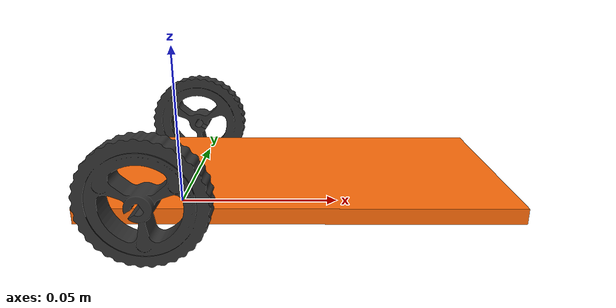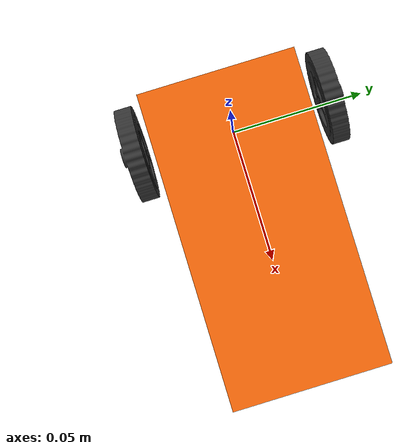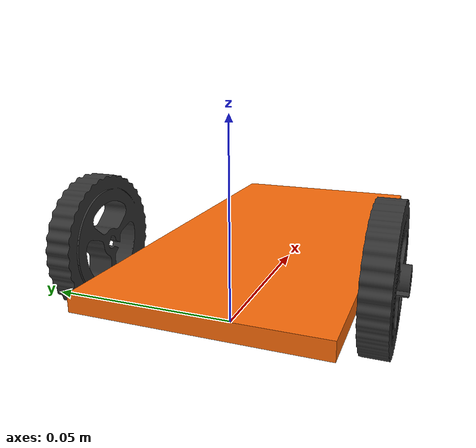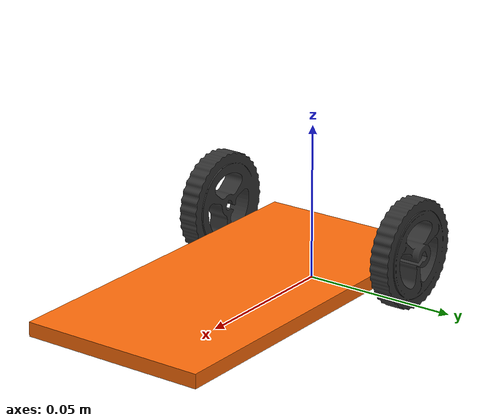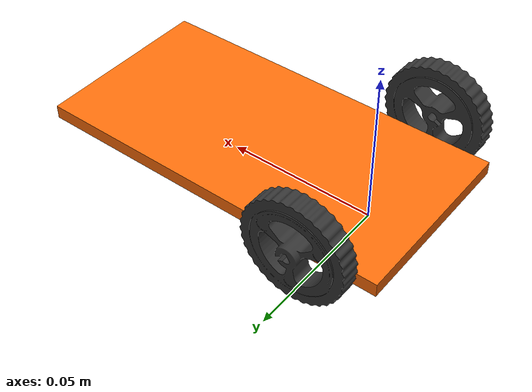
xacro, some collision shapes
<?xml version="1.0"?>
<robot xmlns:xacro="http://www.ros.org/wiki/xacro" name="rrc_2wheel_robot">

  <!--Color Properties-->
  <material name="blue">
    <color rgba="0 0 0.8 1"/>
  </material>
  <material name="grey">
    <color rgba="0.2 0.2 0.2 1"/>
  </material>
  <material name="orange">
    <color rgba="1.0 0.423529411765 0.0392156862745 1.0"/>
  </material>

  <gazebo reference="robot_chassis">
    <material>Gazebo/Orange</material>
    <turnGravityOff>false</turnGravityOff>
  </gazebo>
  <gazebo reference="Left_wheel">
    <material>Gazebo/Grey</material>
    <turnGravityOff>false</turnGravityOff>
  </gazebo>
  <gazebo reference="Right_wheel">
    <material>Gazebo/Grey</material>
    <turnGravityOff>false</turnGravityOff>
  </gazebo>

  <!--Base footprint ie. main parent link-->
  <link name="base_footprint">
   </link>

  <!--Robot chassis link-->
  <link
    name="robot_chassis">
    <inertial>
      <origin
        xyz="0.0382 0 0.0125"
        rpy="1.5708 0 0" />
      <mass
        value="0.4" />
      <inertia
        ixx="0.000090506"
        ixy="0"
        ixz="0"
        iyy="0.00045"
        iyz="0"
        izz="0.000360506" />
    </inertial>
    <visual>
      <origin
        xyz="0 0 0"
        rpy="0 0 0" />
      <geometry>
        <mesh
          filename="package://rrc_2wheel_robot/meshes/robot_chassis.STL" />
      </geometry>
      <material
        name="orange">
      </material>
    </visual>
    <collision>
      <origin
        xyz="0.0382 0 0.0125"
        rpy="0 0 0" />
      <geometry>
        <box
          size="0.12 0.06 0.0045" />
      </geometry>
    </collision>
  </link>
  <!--base footprint to Robot chassis joint-->
  <joint
    name="base_footprint_joint"
    type="fixed">
    <origin
      xyz="0 0 -0.003"
      rpy="0 0 0" />
    <parent
      link="base_footprint"/>
    <child
      link="robot_chassis"/>
  </joint>

  <!--Left Wheel link-->
  <link
    name="Left_wheel">
    <inertial>
      <origin
        xyz="1.5739E-05 9.087E-06 -0.0031408"
        rpy="0 0 0" />
      <mass
        value="0.06" />
      <inertia
        ixx="3.6121E-06"
        ixy="6.4607E-10"
        ixz="-6.1593E-10"
        iyy="3.6114E-06"
        iyz="-3.5561E-10"
        izz="6.9454E-06" />
    </inertial>
    <visual>
      <origin
        xyz="0 0 0"
        rpy="0 3.14 0" />
      <geometry>
        <mesh
          filename="package://rrc_2wheel_robot/meshes/Left_wheel.STL" />
      </geometry>
      <material
        name="grey">
      </material>
    </visual>
    <collision>
      <origin
        xyz="0 0 0"
        rpy="0 3.14 0" />
      <geometry>
        <mesh
          filename="package://rrc_2wheel_robot/meshes/Left_wheel_collision.STL" />
      </geometry>
    </collision>
  </link>

  <!--left wheel to Robot chassis joint-->
  <joint
    name="l_wheel_joint"
    type="continuous">
    <origin
      xyz="-0.00018078 0.032511 0.019693"
      rpy="1.5708 0 0" />
    <parent
      link="robot_chassis" />
    <child
      link="Left_wheel" />
    <axis
      xyz="0 0 -1" />
    <limit
      effort="1000"
      velocity="1000" />
    <!--joint_properties
      damping="1.0"
      friction="1.0" -->
  </joint>

  <transmission name="l_wheel_joint_trans">
      <type>transmission_interface/SimpleTransmission</type>
      <joint name="l_wheel_joint" />
      <actuator name="$l_wheel_joint_motor">
        <hardwareInterface>EffortJointInterface</hardwareInterface>
        <mechanicalReduction>1</mechanicalReduction>
      </actuator>
    </transmission>

  <gazebo reference="Left_wheel">
    <kp>10000000.0</kp>
    <kd>100.0</kd>
    <mu1>35.0</mu1>
    <mu2>35.0</mu2>
    <material>Gazebo/Grey</material>
   </gazebo>

  <!--Right Wheel link-->
  <link
    name="Right_wheel">
    <inertial>
      <origin
        xyz="1.5739E-05 9.087E-06 0.0031408"
        rpy="0 0 0" />
      <mass
        value="0.06" />
      <inertia
        ixx="3.6121E-06"
        ixy="6.4607E-10"
        ixz="-6.1593E-10"
        iyy="3.6114E-06"
        iyz="-3.5561E-10"
        izz="6.9454E-06" />
    </inertial>
    <visual>
      <origin
        xyz="0 0 0"
        rpy="0 0 0" />
      <geometry>
        <mesh
          filename="package://rrc_2wheel_robot/meshes/Right_wheel.STL" />
      </geometry>
      <material
        name="grey">
      </material>
    </visual>
    <collision>
      <origin
        xyz="0 0 0"
        rpy="0 0 0" />
      <geometry>
        <mesh
          filename="package://rrc_2wheel_robot/meshes/Right_wheel_collision.STL" />
      </geometry>
    </collision>
  </link>

  <!--Right wheel to Robot chassis joint-->
  <joint
    name="r_wheel_joint"
    type="continuous">
    <origin
      xyz="-0.00018078 -0.032511 0.019693"
      rpy="1.5708 0 0" />
    <parent
      link="robot_chassis" />
    <child
      link="Right_wheel" />
    <axis
      xyz="0 0 -1" />
    <limit
      effort="1000"
      velocity="1000" />
    <!--joint_properties
      damping="1.0"
      friction="1.0" -->
  </joint>

  <transmission name="r_wheel_joint_trans">
      <type>transmission_interface/SimpleTransmission</type>
      <joint name="r_wheel_joint" />
      <actuator name="$r_wheel_joint_motor">
        <hardwareInterface>EffortJointInterface</hardwareInterface>
        <mechanicalReduction>1</mechanicalReduction>
      </actuator>
    </transmission>

  <gazebo reference="Right_wheel">
    <kp>10000000.0</kp>
    <kd>100.0</kd>
    <mu1>35.0</mu1>
    <mu2>35.0</mu2>
    <material>Gazebo/Grey</material>
   </gazebo>

  <!--Castor wheel link-->
  <link
    name="Castor_wheel">
    <inertial>
      <origin
        xyz="0 0 0"
        rpy="0 0 0" />
      <mass
        value="0.005" />
      <inertia
        ixx="0"
        ixy="0"
        ixz="0"
        iyy="0"
        iyz="0"
        izz="0" />
    </inertial>
    <visual>
      <origin
        xyz="0 0 0"
        rpy="0 0 0" />
      <geometry>
        <mesh
          filename="package://rrc_2wheel_robot/meshes/Castor_wheel.STL" />
      </geometry>
      <material
        name="">
        <color
          rgba="1 1 1 1" />
      </material>
    </visual>
    <collision>
      <origin
        xyz="0 0 0"
        rpy="0 0 0" />
      <geometry>
        <mesh
          filename="package://rrc_2wheel_robot/meshes/Castor_wheel_collision.STL" />
      </geometry>
    </collision>
  </link>

  <!--Castor wheel to Robot chassis joint-->
  <joint
    name="castor_joint"
    type="fixed">
    <origin
      xyz="0.060344 -0.00020036 0.0046825"
      rpy="-1.5895 0.02407 1.6021" />
    <parent
      link="robot_chassis" />
    <child
      link="Castor_wheel" />
    <axis
      xyz="0 0 0" />
  </joint>

  <!--Left range sensor link-->
  <link name="sonar_left">
   </link>
  <joint
    name="L_sensor"
    type="fixed">
    <origin
      xyz="0.054044 0.030189 0.024693"
      rpy="0 0 1.5708" />
    <parent
      link="robot_chassis" />
    <child
      link="sonar_left" />
    <axis
      xyz="0 0 0" />
  </joint>
      <gazebo reference="sonar_left">
      <sensor type="ray" name="sonar_left_sensor">
        <visualize>true</visualize>
        <update_rate>5</update_rate>
        <ray>
          <scan>
            <horizontal>
              <samples>5</samples>
              <resolution>1.0</resolution>
              <min_angle>-0.1</min_angle>
              <max_angle>0.1</max_angle>
            </horizontal>
            <vertical>
              <samples>5</samples>
              <resolution>1.0</resolution>
              <min_angle>-0.05</min_angle>
              <max_angle>0.05</max_angle>
            </vertical>
          </scan>
          <range>
            <min>0.02</min>
            <max>0.5</max>
            <resolution>0.01</resolution>
          </range>
        </ray>
        <!-- Gazebo-ROS interface plugin -->
        <plugin filename="libgazebo_ros_range.so" name="gazebo_ros_range">
          <gaussianNoise>0.015</gaussianNoise>
          <alwaysOn>true</alwaysOn>
          <updateRate>5</updateRate>
          <topicName>/sonar_l_sensor</topicName>
          <frameName>sonar_left</frameName>
          <fov>0.5</fov>
          <radiation>ultrasound</radiation>
        </plugin>
      </sensor>
    </gazebo>

  <!--Front range sensor link-->
  <link name="sonar_front">
   </link>
  <joint
    name="F_sensor"
    type="fixed">
    <origin
      xyz="0.084719 6.3686E-05 0.024693"
      rpy="0 0 0" />
    <parent
      link="robot_chassis" />
    <child
      link="sonar_front" />
    <axis
      xyz="0 0 0" />
  </joint>
      <gazebo reference="sonar_front">
      <sensor type="ray" name="sonar_front_sensor">
        <visualize>true</visualize>
        <update_rate>5</update_rate>
        <ray>
          <scan>
            <horizontal>
              <samples>5</samples>
              <resolution>1.0</resolution>
              <min_angle>-0.1</min_angle>
              <max_angle>0.1</max_angle>
            </horizontal>
            <vertical>
              <samples>5</samples>
              <resolution>1.0</resolution>
              <min_angle>-0.05</min_angle>
              <max_angle>0.05</max_angle>
            </vertical>
          </scan>
          <range>
            <min>0.02</min>
            <max>0.5</max>
            <resolution>0.01</resolution>
          </range>
        </ray>
        <!-- Gazebo-ROS interface plugin -->
        <plugin filename="libgazebo_ros_range.so" name="gazebo_ros_range">
          <gaussianNoise>0.015</gaussianNoise>
          <alwaysOn>true</alwaysOn>
          <updateRate>5</updateRate>
          <topicName>/sonar_f_sensor</topicName>
          <frameName>sonar_front</frameName>
          <fov>0.5</fov>
          <radiation>ultrasound</radiation>
        </plugin>
      </sensor>
    </gazebo>
  <!--Right range sensor link-->
  <link name="sonar_right">
   </link>
  <joint
    name="R_sensor"
    type="fixed">
    <origin
      xyz="0.054044 -0.030611 0.024693"
      rpy="0 0 -1.5708" />
    <parent
      link="robot_chassis" />
    <child
      link="sonar_right" />
    <axis
      xyz="0 0 0" />
  </joint>
      <gazebo reference="sonar_right">
      <sensor type="ray" name="sonar_right_sensor">
        <visualize>true</visualize>
        <update_rate>5</update_rate>
        <ray>
          <scan>
            <horizontal>
              <samples>5</samples>
              <resolution>1.0</resolution>
              <min_angle>-0.1</min_angle>
              <max_angle>0.1</max_angle>
            </horizontal>
            <vertical>
              <samples>5</samples>
              <resolution>1.0</resolution>
              <min_angle>-0.05</min_angle>
              <max_angle>0.05</max_angle>
            </vertical>
          </scan>
          <range>
            <min>0.02</min>
            <max>0.5</max>
            <resolution>0.01</resolution>
          </range>
        </ray>
        <!-- Gazebo-ROS interface plugin -->
        <plugin filename="libgazebo_ros_range.so" name="gazebo_ros_range">
          <gaussianNoise>0.015</gaussianNoise>
          <alwaysOn>true</alwaysOn>
          <updateRate>5</updateRate>
          <topicName>/sonar_r_sensor</topicName>
          <frameName>sonar_right</frameName>
          <fov>0.5</fov>
          <radiation>ultrasound</radiation>
        </plugin>
      </sensor>
    </gazebo>

  <!-- Differential drive controller  -->
  <gazebo>
    <plugin name="differential_drive_controller" filename="libgazebo_ros_diff_drive.so">

      <rosDebugLevel>Debug</rosDebugLevel>
      <publishWheelTF>true</publishWheelTF>
      <publishOdomTF>true</publishOdomTF>
      <robotNamespace>/</robotNamespace>
      <publishTf>1</publishTf>
      <publishWheelJointState>true</publishWheelJointState>
      <alwaysOn>true</alwaysOn>
      <updateRate>100.0</updateRate>
      <leftJoint>l_wheel_joint</leftJoint>
      <rightJoint>r_wheel_joint</rightJoint>
      <wheelSeparation>0.0646</wheelSeparation>
      <wheelDiameter>0.03412</wheelDiameter>
      <broadcastTF>1</broadcastTF>
      <wheelTorque>20</wheelTorque>
      <wheelAcceleration>2</wheelAcceleration>
      <commandTopic>rrc_2wheel_robot/cmd_vel</commandTopic>
      <odometryFrame>odom</odometryFrame>
      <odometryTopic>rrc_2wheel_robot/odom</odometryTopic>
      <robotBaseFrame>base_footprint</robotBaseFrame>

    </plugin>
  </gazebo>
</robot>
